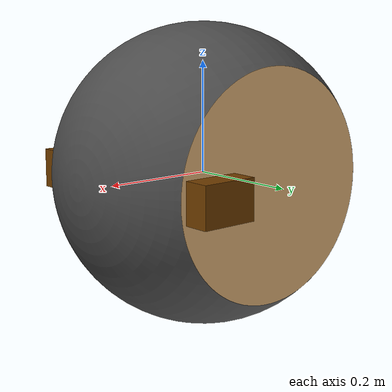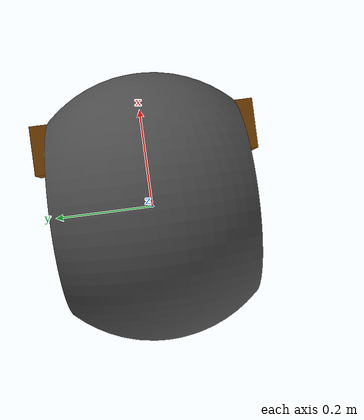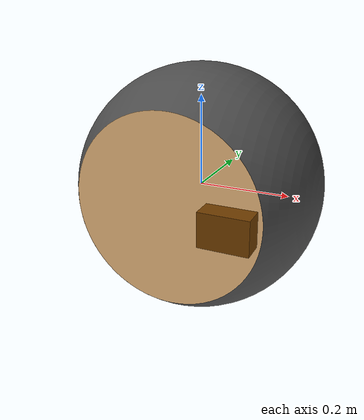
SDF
<?xml version="1.0" ?>
<!-- Generated using onshape-to-robot -->
<!-- Onshape https://cad.onshape.com/documents/8292e6d600ced3c2465d3841/w/430d427fb0d84c225e0144c5/e/6feb0eee0dd640eee4462cd0 -->
<sdf version="1.7">
  <model name="spherical_robot">
    <!-- Link frame -->
    <link name="frame">
      <inertial>
        <pose>0.000577881 -2.23282e-10 0.00209747 0 0 0</pose>
        <mass>10.209</mass>
        <inertia>
          <ixx>0.252055</ixx>
          <ixy>-1.31731e-12</ixy>
          <ixz>1.23742e-05</ixz>
          <iyy>0.146757</iyy>
          <iyz>-1.18668e-11</iyz>
          <izz>0.242668</izz>
        </inertia>
      </inertial>
      <pose>0 0 0 0 -0 0</pose>
      <!-- Part motor -->
      <visual name="motor_visual_mesh_1">
        <pose relative_to="frame">-4.85723e-17 -0.045 0.135 -3.88578e-16 2.02621e-16 -1.5708</pose>
        <geometry>
          <mesh>
            <uri>model://spherical_robot/assets/motor.stl</uri>
          </mesh>
        </geometry>
        <material>
          <ambient>0.498039 0.498039 0.498039 1</ambient>
          <diffuse>0.498039 0.498039 0.498039 1</diffuse>
          <specular>0.1 0.1 0.1 1</specular>
          <emissive>0 0 0 0</emissive>
        </material>
      </visual>
      <collision name="motor_collision_mesh_2">
        <pose relative_to="frame">-4.85723e-17 -0.045 0.135 -3.88578e-16 2.02621e-16 -1.5708</pose>
        <geometry>
          <mesh>
            <uri>model://spherical_robot/assets/motor.stl</uri>
          </mesh>
        </geometry>
      </collision>
      <!-- Part frame -->
      <visual name="frame_visual_mesh_1">
        <pose relative_to="frame">-2.24989e-18 -2.64958e-18 9.55168e-18 -5.29661e-17 9.99201e-16 0</pose>
        <geometry>
          <mesh>
            <uri>model://spherical_robot/assets/frame.stl</uri>
          </mesh>
        </geometry>
        <material>
          <ambient>0.917647 0.72549 0.490196 1</ambient>
          <diffuse>0.917647 0.72549 0.490196 1</diffuse>
          <specular>0.1 0.1 0.1 1</specular>
          <emissive>0 0 0 0</emissive>
        </material>
      </visual>
      <collision name="frame_collision_mesh_2">
        <pose relative_to="frame">-2.24989e-18 -2.64958e-18 9.55168e-18 -5.29661e-17 9.99201e-16 0</pose>
        <geometry>
          <mesh>
            <uri>model://spherical_robot/assets/frame.stl</uri>
          </mesh>
        </geometry>
      </collision>
      <!-- Part camera_right -->
      <visual name="camera_right_visual_mesh_1">
        <pose relative_to="frame">0.28 -6.56533e-15 -3.33067e-16 8.07217e-17 -1.44329e-15 3.14159</pose>
        <geometry>
          <mesh>
            <uri>model://spherical_robot/assets/camera_right.stl</uri>
          </mesh>
        </geometry>
        <material>
          <ambient>0.447059 0.243137 0 1</ambient>
          <diffuse>0.447059 0.243137 0 1</diffuse>
          <specular>0.1 0.1 0.1 1</specular>
          <emissive>0 0 0 0</emissive>
        </material>
      </visual>
      <collision name="camera_right_collision_mesh_2">
        <pose relative_to="frame">0.28 -6.56533e-15 -3.33067e-16 8.07217e-17 -1.44329e-15 3.14159</pose>
        <geometry>
          <mesh>
            <uri>model://spherical_robot/assets/camera_right.stl</uri>
          </mesh>
        </geometry>
      </collision>
      <!-- Part camera_left -->
      <visual name="camera_left_visual_mesh_1">
        <pose relative_to="frame">0.28 2.52059e-15 -2.77556e-16 1.09066e-16 -1.16573e-15 -3.14159</pose>
        <geometry>
          <mesh>
            <uri>model://spherical_robot/assets/camera_left.stl</uri>
          </mesh>
        </geometry>
        <material>
          <ambient>0.447059 0.243137 0 1</ambient>
          <diffuse>0.447059 0.243137 0 1</diffuse>
          <specular>0.1 0.1 0.1 1</specular>
          <emissive>0 0 0 0</emissive>
        </material>
      </visual>
      <collision name="camera_left_collision_mesh_2">
        <pose relative_to="frame">0.28 2.52059e-15 -2.77556e-16 1.09066e-16 -1.16573e-15 -3.14159</pose>
        <geometry>
          <mesh>
            <uri>model://spherical_robot/assets/camera_left.stl</uri>
          </mesh>
        </geometry>
      </collision>
      <!-- Part motor_2 -->
      <visual name="motor_2_visual_mesh_1">
        <pose relative_to="frame">-3.46945e-17 0.045 0.135 -1.77636e-15 2.04605e-16 1.5708</pose>
        <geometry>
          <mesh>
            <uri>model://spherical_robot/assets/motor.stl</uri>
          </mesh>
        </geometry>
        <material>
          <ambient>0.498039 0.498039 0.498039 1</ambient>
          <diffuse>0.498039 0.498039 0.498039 1</diffuse>
          <specular>0.1 0.1 0.1 1</specular>
          <emissive>0 0 0 0</emissive>
        </material>
      </visual>
      <collision name="motor_2_collision_mesh_2">
        <pose relative_to="frame">-3.46945e-17 0.045 0.135 -1.77636e-15 2.04605e-16 1.5708</pose>
        <geometry>
          <mesh>
            <uri>model://spherical_robot/assets/motor.stl</uri>
          </mesh>
        </geometry>
      </collision>
    </link>
    <!-- Link inertial_wheel -->
    <link name="inertial_wheel">
      <inertial>
        <pose>1.05807e-17 2.80279e-17 0.0154962 0 0 0</pose>
        <mass>5.42378</mass>
        <inertia>
          <ixx>0.0270726</ixx>
          <ixy>0</ixy>
          <ixz>3.77521e-33</ixz>
          <iyy>0.0270726</iyy>
          <iyz>-1.06782e-32</iyz>
          <izz>0.0530374</izz>
        </inertia>
      </inertial>
      <pose relative_to="rw_back">0 0 0 0 -0 0</pose>
      <!-- Part inertial_wheel -->
      <visual name="inertial_wheel_visual_mesh_1">
        <pose relative_to="inertial_wheel">0 -3.06162e-19 0.0155 -1.5708 -1.39448e-31 0</pose>
        <geometry>
          <mesh>
            <uri>model://spherical_robot/assets/inertial_wheel.stl</uri>
          </mesh>
        </geometry>
        <material>
          <ambient>0.654902 0.823529 0.576471 1</ambient>
          <diffuse>0.654902 0.823529 0.576471 1</diffuse>
          <specular>0.1 0.1 0.1 1</specular>
          <emissive>0 0 0 0</emissive>
        </material>
      </visual>
      <collision name="inertial_wheel_collision_mesh_2">
        <pose relative_to="inertial_wheel">0 -3.06162e-19 0.0155 -1.5708 -1.39448e-31 0</pose>
        <geometry>
          <mesh>
            <uri>model://spherical_robot/assets/inertial_wheel.stl</uri>
          </mesh>
        </geometry>
      </collision>
    </link>
    <!-- Joint from frame to inertial_wheel -->
    <joint name="rw_back" type="revolute">
      <pose relative_to="frame">-0.155 -9.58847e-18 1.99034e-16 -1.5708 7.45191e-07 -1.5708</pose>
      <parent>frame</parent>
      <child>inertial_wheel</child>
      <axis>
        <xyz>0 0 1</xyz>
        <limit>
          <effort>10</effort>
          <velocity>10</velocity>
          <lower>-3.141592653589793</lower>
          <upper>3.141592653589793</upper>
        </limit>
        <dynamics>
          <friction>0.0</friction>
          <damping>0.0</damping>
        </dynamics>
      </axis>
    </joint>
    <!-- Link inertial_wheel_2 -->
    <link name="inertial_wheel_2">
      <inertial>
        <pose>1.05807e-17 2.80279e-17 0.0154962 0 0 0</pose>
        <mass>5.42378</mass>
        <inertia>
          <ixx>0.0270726</ixx>
          <ixy>-7.51415e-19</ixy>
          <ixz>-3.73317e-33</ixz>
          <iyy>0.0270726</iyy>
          <iyz>-1.33478e-33</iyz>
          <izz>0.0530374</izz>
        </inertia>
      </inertial>
      <pose relative_to="rw_right">0 0 0 0 -0 0</pose>
      <!-- Part inertial_wheel_2 -->
      <visual name="inertial_wheel_2_visual_mesh_1">
        <pose relative_to="inertial_wheel_2">0 -3.06162e-19 0.0155 -1.5708 -1.94134e-31 -1.38778e-17</pose>
        <geometry>
          <mesh>
            <uri>model://spherical_robot/assets/inertial_wheel.stl</uri>
          </mesh>
        </geometry>
        <material>
          <ambient>0.654902 0.823529 0.576471 1</ambient>
          <diffuse>0.654902 0.823529 0.576471 1</diffuse>
          <specular>0.1 0.1 0.1 1</specular>
          <emissive>0 0 0 0</emissive>
        </material>
      </visual>
      <collision name="inertial_wheel_2_collision_mesh_2">
        <pose relative_to="inertial_wheel_2">0 -3.06162e-19 0.0155 -1.5708 -1.94134e-31 -1.38778e-17</pose>
        <geometry>
          <mesh>
            <uri>model://spherical_robot/assets/inertial_wheel.stl</uri>
          </mesh>
        </geometry>
      </collision>
    </link>
    <!-- Joint from frame to inertial_wheel_2 -->
    <joint name="rw_right" type="revolute">
      <pose relative_to="frame">2.01587e-17 -0.155 2.1537e-17 1.5708 -0.0901661 3.14159</pose>
      <parent>frame</parent>
      <child>inertial_wheel_2</child>
      <axis>
        <xyz>0 0 1</xyz>
        <limit>
          <effort>10</effort>
          <velocity>10</velocity>
          <lower>-3.141592653589793</lower>
          <upper>3.141592653589793</upper>
        </limit>
        <dynamics>
          <friction>0.0</friction>
          <damping>0.0</damping>
        </dynamics>
      </axis>
    </joint>
    <!-- Link inertial_wheel_3 -->
    <link name="inertial_wheel_3">
      <inertial>
        <pose>-1.05807e-17 -1.65967e-17 0.0154962 0 0 0</pose>
        <mass>5.42378</mass>
        <inertia>
          <ixx>0.0270726</ixx>
          <ixy>-4.41228e-19</ixy>
          <ixz>-2.59332e-18</ixz>
          <iyy>0.0270726</iyy>
          <iyz>2.48465e-17</iyz>
          <izz>0.0530374</izz>
        </inertia>
      </inertial>
      <pose relative_to="rw_front">0 0 0 0 -0 0</pose>
      <!-- Part inertial_wheel_3 -->
      <visual name="inertial_wheel_3_visual_mesh_1">
        <pose relative_to="inertial_wheel_3">2.28149e-25 1.17371e-17 0.0155 -1.5708 -9.57921e-17 3.14159</pose>
        <geometry>
          <mesh>
            <uri>model://spherical_robot/assets/inertial_wheel.stl</uri>
          </mesh>
        </geometry>
        <material>
          <ambient>0.654902 0.823529 0.576471 1</ambient>
          <diffuse>0.654902 0.823529 0.576471 1</diffuse>
          <specular>0.1 0.1 0.1 1</specular>
          <emissive>0 0 0 0</emissive>
        </material>
      </visual>
      <collision name="inertial_wheel_3_collision_mesh_2">
        <pose relative_to="inertial_wheel_3">2.28149e-25 1.17371e-17 0.0155 -1.5708 -9.57921e-17 3.14159</pose>
        <geometry>
          <mesh>
            <uri>model://spherical_robot/assets/inertial_wheel.stl</uri>
          </mesh>
        </geometry>
      </collision>
    </link>
    <!-- Joint from frame to inertial_wheel_3 -->
    <joint name="rw_front" type="revolute">
      <pose relative_to="frame">0.155 -2.64958e-18 -1.57672e-16 -1.5708 5.29661e-17 1.5708</pose>
      <parent>frame</parent>
      <child>inertial_wheel_3</child>
      <axis>
        <xyz>0 0 1</xyz>
        <limit>
          <effort>10</effort>
          <velocity>10</velocity>
          <lower>-3.141592653589793</lower>
          <upper>3.141592653589793</upper>
        </limit>
        <dynamics>
          <friction>0.0</friction>
          <damping>0.0</damping>
        </dynamics>
      </axis>
    </joint>
    <!-- Link inertial_wheel_4 -->
    <link name="inertial_wheel_4">
      <inertial>
        <pose>1.05807e-17 2.80279e-17 0.0154962 0 0 0</pose>
        <mass>5.42378</mass>
        <inertia>
          <ixx>0.0270726</ixx>
          <ixy>3.75707e-19</ixy>
          <ixz>1.84215e-33</ixz>
          <iyy>0.0270726</iyy>
          <iyz>3.01012e-50</iyz>
          <izz>0.0530374</izz>
        </inertia>
      </inertial>
      <pose relative_to="rw_left">0 0 0 0 -0 0</pose>
      <!-- Part inertial_wheel_4 -->
      <visual name="inertial_wheel_4_visual_mesh_1">
        <pose relative_to="inertial_wheel_4">0 -3.06162e-19 0.0155 -1.5708 -8.01187e-32 1.38778e-17</pose>
        <geometry>
          <mesh>
            <uri>model://spherical_robot/assets/inertial_wheel.stl</uri>
          </mesh>
        </geometry>
        <material>
          <ambient>0.654902 0.823529 0.576471 1</ambient>
          <diffuse>0.654902 0.823529 0.576471 1</diffuse>
          <specular>0.1 0.1 0.1 1</specular>
          <emissive>0 0 0 0</emissive>
        </material>
      </visual>
      <collision name="inertial_wheel_4_collision_mesh_2">
        <pose relative_to="inertial_wheel_4">0 -3.06162e-19 0.0155 -1.5708 -8.01187e-32 1.38778e-17</pose>
        <geometry>
          <mesh>
            <uri>model://spherical_robot/assets/inertial_wheel.stl</uri>
          </mesh>
        </geometry>
      </collision>
    </link>
    <!-- Joint from frame to inertial_wheel_4 -->
    <joint name="rw_left" type="revolute">
      <pose relative_to="frame">-2.46585e-17 0.155 -5.29081e-18 -1.5708 -0.0901661 3.14159</pose>
      <parent>frame</parent>
      <child>inertial_wheel_4</child>
      <axis>
        <xyz>0 0 1</xyz>
        <limit>
          <effort>10</effort>
          <velocity>10</velocity>
          <lower>-3.141592653589793</lower>
          <upper>3.141592653589793</upper>
        </limit>
        <dynamics>
          <friction>0.0</friction>
          <damping>0.0</damping>
        </dynamics>
      </axis>
    </joint>
    <!-- Link outer -->
    <link name="outer">
      <inertial>
        <pose>5.53467e-08 2.15049e-06 0.18028 0 0 0</pose>
        <mass>21.3538</mass>
        <inertia>
          <ixx>0.695177</ixx>
          <ixy>-1.55679e-06</ixy>
          <ixz>-1.93071e-16</ixz>
          <iyy>0.695117</iyy>
          <iyz>-2.20252e-17</iyz>
          <izz>1.03355</izz>
        </inertia>
      </inertial>
      <pose relative_to="outer_2">0 0 0 0 -0 0</pose>
      <!-- Part internal_gear -->
      <visual name="internal_gear_visual_mesh_1">
        <pose relative_to="outer">-0.000178996 -0.00695489 0.264747 -1.54507 1.5708 0</pose>
        <geometry>
          <mesh>
            <uri>model://spherical_robot/assets/internal_gear.stl</uri>
          </mesh>
        </geometry>
        <material>
          <ambient>0.796078 0.823529 0.937255 1</ambient>
          <diffuse>0.796078 0.823529 0.937255 1</diffuse>
          <specular>0.1 0.1 0.1 1</specular>
          <emissive>0 0 0 0</emissive>
        </material>
      </visual>
      <collision name="internal_gear_collision_mesh_2">
        <pose relative_to="outer">-0.000178996 -0.00695489 0.264747 -1.54507 1.5708 0</pose>
        <geometry>
          <mesh>
            <uri>model://spherical_robot/assets/internal_gear.stl</uri>
          </mesh>
        </geometry>
      </collision>
      <!-- Part internal_gear_2 -->
      <visual name="internal_gear_2_visual_mesh_1">
        <pose relative_to="outer">0.00695489 -0.000178996 0.0596262 -3.11586 1.5708 0</pose>
        <geometry>
          <mesh>
            <uri>model://spherical_robot/assets/internal_gear.stl</uri>
          </mesh>
        </geometry>
        <material>
          <ambient>0.796078 0.823529 0.937255 1</ambient>
          <diffuse>0.796078 0.823529 0.937255 1</diffuse>
          <specular>0.1 0.1 0.1 1</specular>
          <emissive>0 0 0 0</emissive>
        </material>
      </visual>
      <collision name="internal_gear_2_collision_mesh_2">
        <pose relative_to="outer">0.00695489 -0.000178996 0.0596262 -3.11586 1.5708 0</pose>
        <geometry>
          <mesh>
            <uri>model://spherical_robot/assets/internal_gear.stl</uri>
          </mesh>
        </geometry>
      </collision>
      <!-- Part outer -->
      <visual name="outer_visual_mesh_1">
        <pose relative_to="outer">1.53833e-16 -5.83429e-17 0.18028 -1.5708 3.78628e-16 -1.59653</pose>
        <geometry>
          <mesh>
            <uri>model://spherical_robot/assets/outer.stl</uri>
          </mesh>
        </geometry>
        <material>
          <ambient>0.301961 0.301961 0.301961 1</ambient>
          <diffuse>0.301961 0.301961 0.301961 1</diffuse>
          <specular>0.1 0.1 0.1 1</specular>
          <emissive>0 0 0 0</emissive>
        </material>
      </visual>
      <collision name="outer_collision_mesh_2">
        <pose relative_to="outer">1.53833e-16 -5.83429e-17 0.18028 -1.5708 3.78628e-16 -1.59653</pose>
        <geometry>
          <mesh>
            <uri>model://spherical_robot/assets/outer.stl</uri>
          </mesh>
        </geometry>
      </collision>
    </link>
    <!-- Joint from frame to outer -->
    <joint name="outer_2" type="revolute">
      <pose relative_to="frame">2.3813e-17 -0.180277 3.13467e-17 -1.5708 9.99201e-16 0</pose>
      <parent>frame</parent>
      <child>outer</child>
      <axis>
        <xyz>0 0 1</xyz>
        <limit>
          <effort>10</effort>
          <velocity>10</velocity>
          <lower>-3.141592653589793</lower>
          <upper>3.141592653589793</upper>
        </limit>
        <mimic joint="motor_joint_2">
          <multiplier>0.25</multiplier>
        </mimic>
        <dynamics>
          <friction>0.0</friction>
          <damping>0.0</damping>
        </dynamics>
      </axis>
    </joint>
    <!-- Link spur_gear -->
    <link name="spur_gear">
      <inertial>
        <pose>-7.32921e-17 5.55112e-17 0.0109091 0 0 0</pose>
        <mass>0.367668</mass>
        <inertia>
          <ixx>0.000205928</ixx>
          <ixy>-5.55654e-19</ixy>
          <ixz>9.10353e-20</ixz>
          <iyy>0.000205928</iyy>
          <iyz>-9.03609e-20</iyz>
          <izz>0.000382686</izz>
        </inertia>
      </inertial>
      <pose relative_to="motor_joint_1">0 0 0 0 -0 0</pose>
      <!-- Part spur_gear -->
      <visual name="spur_gear_visual_mesh_1">
        <pose relative_to="spur_gear">0.000533272 0.0055324 0.00854085 1.67372 1.5708 0</pose>
        <geometry>
          <mesh>
            <uri>model://spherical_robot/assets/spur_gear.stl</uri>
          </mesh>
        </geometry>
        <material>
          <ambient>0.980392 0.796078 0.262745 1</ambient>
          <diffuse>0.980392 0.796078 0.262745 1</diffuse>
          <specular>0.1 0.1 0.1 1</specular>
          <emissive>0 0 0 0</emissive>
        </material>
      </visual>
      <collision name="spur_gear_collision_mesh_2">
        <pose relative_to="spur_gear">0.000533272 0.0055324 0.00854085 1.67372 1.5708 0</pose>
        <geometry>
          <mesh>
            <uri>model://spherical_robot/assets/spur_gear.stl</uri>
          </mesh>
        </geometry>
      </collision>
    </link>
    <!-- Joint from frame to spur_gear -->
    <joint name="motor_joint_1" type="revolute">
      <pose relative_to="frame">1.29223e-17 -0.113466 0.135 -1.5708 3.88578e-16 9.00338e-16</pose>
      <parent>frame</parent>
      <child>spur_gear</child>
      <axis>
        <xyz>0 0 1</xyz>
        <limit>
          <effort>10</effort>
          <velocity>10</velocity>
          <lower>-3.141592653589793</lower>
          <upper>3.141592653589793</upper>
        </limit>
        <dynamics>
          <friction>0.0</friction>
          <damping>0.0</damping>
        </dynamics>
      </axis>
    </joint>
    <!-- Link spur_gear_2 -->
    <link name="spur_gear_2">
      <inertial>
        <pose>-3.277e-17 -3.72966e-17 -0.0109091 0 0 0</pose>
        <mass>0.367668</mass>
        <inertia>
          <ixx>0.000205928</ixx>
          <ixy>-2.85783e-21</ixy>
          <ixz>-2.15859e-35</ixz>
          <iyy>0.000205928</iyy>
          <iyz>0</iyz>
          <izz>0.000382686</izz>
        </inertia>
      </inertial>
      <pose relative_to="motor_joint_2">0 0 0 0 -0 0</pose>
      <!-- Part spur_gear_2 -->
      <visual name="spur_gear_2_visual_mesh_1">
        <pose relative_to="spur_gear_2">-3.79643e-05 0.00555792 -0.0132773 1.5708 1.5708 0</pose>
        <geometry>
          <mesh>
            <uri>model://spherical_robot/assets/spur_gear.stl</uri>
          </mesh>
        </geometry>
        <material>
          <ambient>0.980392 0.796078 0.262745 1</ambient>
          <diffuse>0.980392 0.796078 0.262745 1</diffuse>
          <specular>0.1 0.1 0.1 1</specular>
          <emissive>0 0 0 0</emissive>
        </material>
      </visual>
      <collision name="spur_gear_2_collision_mesh_2">
        <pose relative_to="spur_gear_2">-3.79643e-05 0.00555792 -0.0132773 1.5708 1.5708 0</pose>
        <geometry>
          <mesh>
            <uri>model://spherical_robot/assets/spur_gear.stl</uri>
          </mesh>
        </geometry>
      </collision>
    </link>
    <!-- Joint from frame to spur_gear_2 -->
    <joint name="motor_joint_2" type="revolute">
      <pose relative_to="frame">-7.88215e-17 0.113466 0.135 -1.5708 -0.102924 3.00523e-16</pose>
      <parent>frame</parent>
      <child>spur_gear_2</child>
      <axis>
        <xyz>0 0 1</xyz>
        <limit>
          <effort>10</effort>
          <velocity>10</velocity>
          <lower>-3.141592653589793</lower>
          <upper>3.141592653589793</upper>
        </limit>
        <mimic joint="motor_joint_1">
          <multiplier>1.0</multiplier>
        </mimic>
        <dynamics>
          <friction>0.0</friction>
          <damping>0.0</damping>
        </dynamics>
      </axis>
    </joint>
    <!-- Link inertial_wheel_5 -->
    <link name="inertial_wheel_5">
      <inertial>
        <pose>9.90667e-18 2.80279e-17 0.0154962 0 0 0</pose>
        <mass>5.42378</mass>
        <inertia>
          <ixx>0.0270726</ixx>
          <ixy>2.38797e-34</ixy>
          <ixz>0</ixz>
          <iyy>0.0270726</iyy>
          <iyz>0</iyz>
          <izz>0.0530374</izz>
        </inertia>
      </inertial>
      <pose relative_to="rw_yaw">0 0 0 0 -0 0</pose>
      <!-- Part inertial_wheel_5 -->
      <visual name="inertial_wheel_5_visual_mesh_1">
        <pose relative_to="inertial_wheel_5">-6.74047e-19 -3.06162e-19 0.0155 -1.5708 -0 8.43008e-47</pose>
        <geometry>
          <mesh>
            <uri>model://spherical_robot/assets/inertial_wheel.stl</uri>
          </mesh>
        </geometry>
        <material>
          <ambient>0.654902 0.823529 0.576471 1</ambient>
          <diffuse>0.654902 0.823529 0.576471 1</diffuse>
          <specular>0.1 0.1 0.1 1</specular>
          <emissive>0 0 0 0</emissive>
        </material>
      </visual>
      <collision name="inertial_wheel_5_collision_mesh_2">
        <pose relative_to="inertial_wheel_5">-6.74047e-19 -3.06162e-19 0.0155 -1.5708 -0 8.43008e-47</pose>
        <geometry>
          <mesh>
            <uri>model://spherical_robot/assets/inertial_wheel.stl</uri>
          </mesh>
        </geometry>
      </collision>
    </link>
    <!-- Joint from frame to inertial_wheel_5 -->
    <joint name="rw_yaw" type="revolute">
      <pose relative_to="frame">7.12527e-18 -2.95574e-18 -0.155 -1.58898e-16 -9.4369e-16 -3.14159</pose>
      <parent>frame</parent>
      <child>inertial_wheel_5</child>
      <axis>
        <xyz>0 0 1</xyz>
        <limit>
          <effort>10</effort>
          <velocity>10</velocity>
          <lower>-3.141592653589793</lower>
          <upper>3.141592653589793</upper>
        </limit>
        <dynamics>
          <friction>0.0</friction>
          <damping>0.0</damping>
        </dynamics>
      </axis>
    </joint>
  </model>
</sdf>
